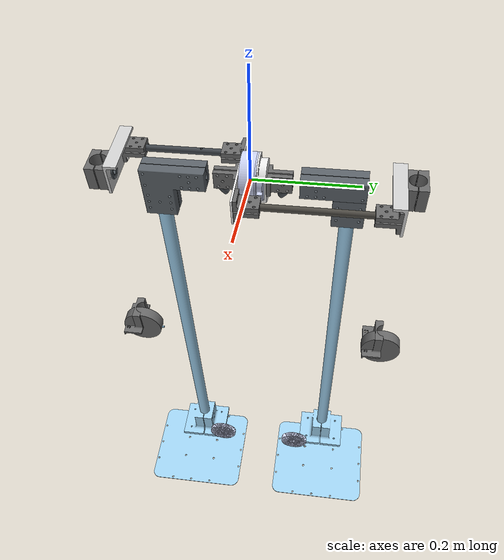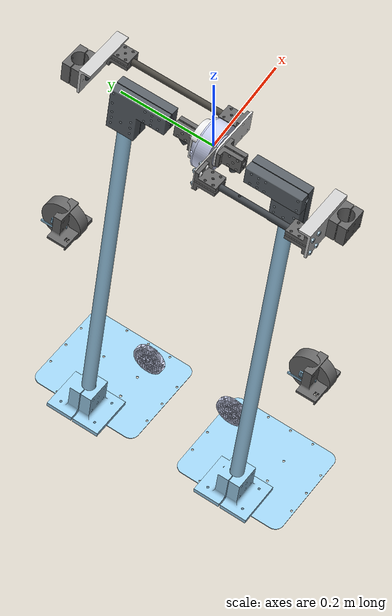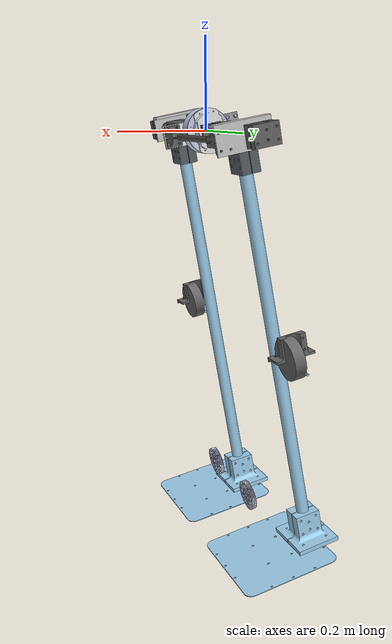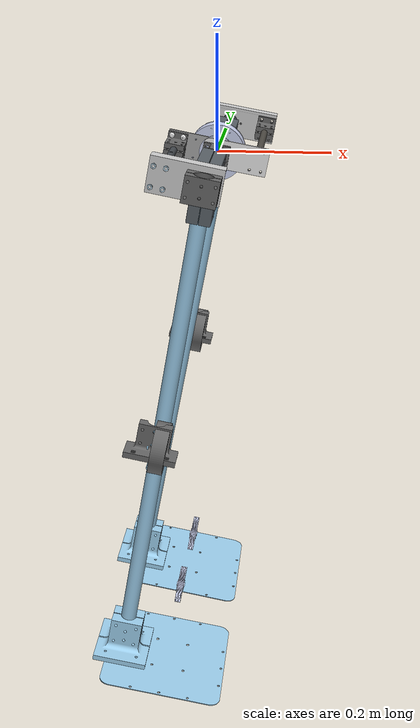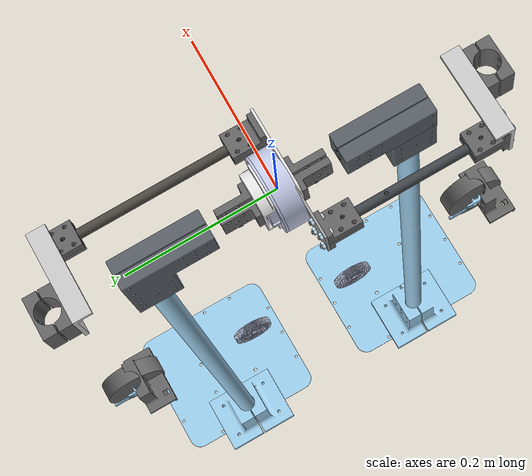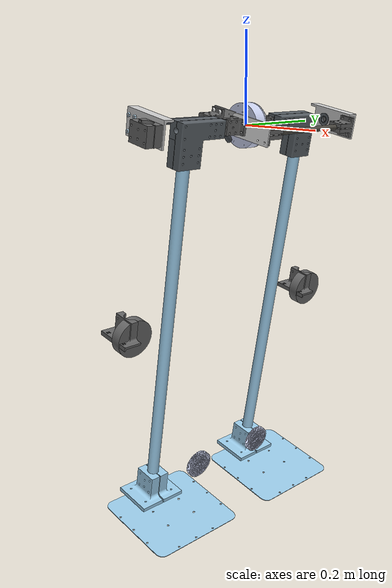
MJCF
<?xml version="1.0" ?>
<!-- Generated using onshape-to-robot -->
<!-- Onshape https://cad.onshape.com/documents/17c5c8d07f4ec308269aab5c/w/49bf5d1c311d43a28f235e29/e/7a95d7201ea4c0bf52a6e0de -->
<mujoco model="export_robot_test">
  <compiler angle="radian" meshdir="assets" autolimits="true"/>
  <default>
    <default class="export_robot_test">
      <joint frictionloss="0.1" armature="0.005"/>
      <position kp="50" dampratio="1"/>
      <default class="visual">
        <geom type="mesh" contype="0" conaffinity="0" group="2"/>
      </default>
      <default class="collision">
        <geom group="3"/>
      </default>
    </default>
  </default>

  <worldbody>
    <!-- Link reduced_left_foot_2 -->
    <body name="reduced_left_foot_2" pos="0 0 0" quat="1 0 0 0" childclass="export_robot_test">
      <freejoint name="reduced_left_foot_2_freejoint"/>
      <inertial pos="-0.0645325 0.00461538 -0.567799" mass="4.81966" fullinertia="1.11497 1.00168 0.295772 -0.00238674 -0.0684407 0.00293669"/>
      <!-- Part part_1 -->
      <geom type="mesh" class="visual" pos="-0.083681 0.262583 -0.47189" quat="0.453796 -0.453796 0.542282 0.542282" mesh="part_1" material="part_1_material"/>
      <geom type="mesh" class="collision" pos="-0.083681 0.262583 -0.47189" quat="0.453796 -0.453796 0.542282 0.542282" mesh="part_1" material="part_1_material"/>
      <!-- Part part_1_2 -->
      <geom type="mesh" class="visual" pos="-0.0904555 -0.309332 -0.471402" quat="0.450431 -0.450431 0.54508 0.54508" mesh="part_1" material="part_1_material"/>
      <geom type="mesh" class="collision" pos="-0.0904555 -0.309332 -0.471402" quat="0.450431 -0.450431 0.54508 0.54508" mesh="part_1" material="part_1_material"/>
      <!-- Part part_1_3 -->
      <geom type="mesh" class="visual" pos="-0.000874984 0.03165 -0.000241419" quat="0.770859 4.75532e-16 -0.637006 -5.92408e-16" mesh="part_1__2" material="part_1__2_material"/>
      <geom type="mesh" class="collision" pos="-0.000874984 0.03165 -0.000241419" quat="0.770859 4.75532e-16 -0.637006 -5.92408e-16" mesh="part_1__2" material="part_1__2_material"/>
      <!-- Part part_1_4 -->
      <geom type="mesh" class="visual" pos="0.0707542 -0.01785 -0.0122902" quat="1.04633e-16 0.0884856 -1.11022e-16 0.996077" mesh="part_1__3" material="part_1__3_material"/>
      <geom type="mesh" class="collision" pos="0.0707542 -0.01785 -0.0122902" quat="1.04633e-16 0.0884856 -1.11022e-16 0.996077" mesh="part_1__3" material="part_1__3_material"/>
      <!-- Part part_1_5 -->
      <geom type="mesh" class="visual" pos="-0.0789215 0.2932 -0.445313" quat="0.704333 -0.0625687 0.0625687 -0.704333" mesh="part_1__4" material="part_1__4_material"/>
      <geom type="mesh" class="collision" pos="-0.0789215 0.2932 -0.445313" quat="0.704333 -0.0625687 0.0625687 -0.704333" mesh="part_1__4" material="part_1__4_material"/>
      <!-- Part part_1_6 -->
      <geom type="mesh" class="visual" pos="-0.0697992 -0.01785 0.0130105" quat="3.95531e-16 0.995511 -5.68989e-16 -0.0946486" mesh="part_1__5" material="part_1__5_material"/>
      <geom type="mesh" class="collision" pos="-0.0697992 -0.01785 0.0130105" quat="3.95531e-16 0.995511 -5.68989e-16 -0.0946486" mesh="part_1__5" material="part_1__5_material"/>
      <!-- Part 90591a260_zinc_plated_steel_hex_nut -->
      <geom type="mesh" class="visual" pos="-0.0764872 -0.261665 0.0312213" quat="0.703932 -0.703932 0.0669267 0.0669267" mesh="90591a260_zinc_plated_steel_hex_nut" material="90591a260_zinc_plated_steel_hex_nut_material"/>
      <geom type="mesh" class="collision" pos="-0.0764872 -0.261665 0.0312213" quat="0.703932 -0.703932 0.0669267 0.0669267" mesh="90591a260_zinc_plated_steel_hex_nut" material="90591a260_zinc_plated_steel_hex_nut_material"/>
      <!-- Part motor_stator_bracker -->
      <geom type="mesh" class="visual" pos="-0.000997625 0.01565 -0.000217887" quat="3.93497e-17 -0.770859 1.11022e-16 -0.637006" mesh="motor_stator_bracker" material="motor_stator_bracker_material"/>
      <geom type="mesh" class="collision" pos="-0.000997625 0.01565 -0.000217887" quat="3.93497e-17 -0.770859 1.11022e-16 -0.637006" mesh="motor_stator_bracker" material="motor_stator_bracker_material"/>
      <!-- Part part_1_7 -->
      <geom type="mesh" class="visual" pos="0.0941791 0.27415 0.016404" quat="0.0625687 -0.704333 -0.704333 0.0625687" mesh="part_1__6" material="part_1__6_material"/>
      <geom type="mesh" class="collision" pos="0.0941791 0.27415 0.016404" quat="0.0625687 -0.704333 -0.704333 0.0625687" mesh="part_1__6" material="part_1__6_material"/>
      <!-- Part part_1_8 -->
      <geom type="mesh" class="visual" pos="-0.0813758 -0.259665 0.0481967" quat="0.0669267 0.703932 -0.703932 -0.0669267" mesh="part_1__6" material="part_1__6_material"/>
      <geom type="mesh" class="collision" pos="-0.0813758 -0.259665 0.0481967" quat="0.0669267 0.703932 -0.703932 -0.0669267" mesh="part_1__6" material="part_1__6_material"/>
      <!-- Part part_1_9 -->
      <geom type="mesh" class="visual" pos="-0.000369909 -0.02125 6.62438e-05" quat="3.67725e-17 0.766902 1.11022e-16 0.641764" mesh="part_1__2" material="part_1__2_material"/>
      <geom type="mesh" class="collision" pos="-0.000369909 -0.02125 6.62438e-05" quat="3.67725e-17 0.766902 1.11022e-16 0.641764" mesh="part_1__2" material="part_1__2_material"/>
      <!-- Part 91239a232_button_head_hex_drive_screw -->
      <geom type="mesh" class="visual" pos="-0.0764872 -0.25429 0.0312213" quat="0.54508 -0.54508 -0.450431 -0.450431" mesh="91239a232_button_head_hex_drive_screw" material="91239a232_button_head_hex_drive_screw_material"/>
      <geom type="mesh" class="collision" pos="-0.0764872 -0.25429 0.0312213" quat="0.54508 -0.54508 -0.450431 -0.450431" mesh="91239a232_button_head_hex_drive_screw" material="91239a232_button_head_hex_drive_screw_material"/>
      <!-- Part part_1_10 -->
      <geom type="mesh" class="visual" pos="-0.0853674 -0.278715 -0.444885" quat="0.703932 -0.0669267 0.0669267 -0.703932" mesh="part_1__4" material="part_1__4_material"/>
      <geom type="mesh" class="collision" pos="-0.0853674 -0.278715 -0.444885" quat="0.703932 -0.0669267 0.0669267 -0.703932" mesh="part_1__4" material="part_1__4_material"/>
      <!-- Part 90591a260_zinc_plated_steel_hex_nut_2 -->
      <geom type="mesh" class="visual" pos="-0.0763457 -0.01285 0.0319588" quat="0.703932 -0.703932 0.0669267 0.0669267" mesh="90591a260_zinc_plated_steel_hex_nut" material="90591a260_zinc_plated_steel_hex_nut_material"/>
      <geom type="mesh" class="collision" pos="-0.0763457 -0.01285 0.0319588" quat="0.703932 -0.703932 0.0669267 0.0669267" mesh="90591a260_zinc_plated_steel_hex_nut" material="90591a260_zinc_plated_steel_hex_nut_material"/>
      <!-- Part part_1_11 -->
      <geom type="mesh" class="visual" pos="-0.0515319 -0.01785 0.00988724" quat="1.84889e-16 0.637006 -3.33067e-16 -0.770859" mesh="part_1__7" material="part_1__7_material"/>
      <geom type="mesh" class="collision" pos="-0.0515319 -0.01785 0.00988724" quat="1.84889e-16 0.637006 -3.33067e-16 -0.770859" mesh="part_1__7" material="part_1__7_material"/>
      <!-- Part 91239a232_button_head_hex_drive_screw_2 -->
      <geom type="mesh" class="visual" pos="-0.0764399 -0.018225 0.0314677" quat="0.54508 0.54508 -0.450431 0.450431" mesh="91239a232_button_head_hex_drive_screw" material="91239a232_button_head_hex_drive_screw_material"/>
      <geom type="mesh" class="collision" pos="-0.0764399 -0.018225 0.0314677" quat="0.54508 0.54508 -0.450431 0.450431" mesh="91239a232_button_head_hex_drive_screw" material="91239a232_button_head_hex_drive_screw_material"/>
      <!-- Part motor_rotor_bracket -->
      <geom type="mesh" class="visual" pos="0.0416526 -0.01785 -0.170894" quat="0.0884856 -8.60049e-17 -0.996077 2.77556e-17" mesh="motor_rotor_bracket" material="motor_rotor_bracket_material"/>
      <geom type="mesh" class="collision" pos="0.0416526 -0.01785 -0.170894" quat="0.0884856 -8.60049e-17 -0.996077 2.77556e-17" mesh="motor_rotor_bracket" material="motor_rotor_bracket_material"/>
      <!-- Part part_1_12 -->
      <geom type="mesh" class="visual" pos="-0.165686 -0.16925 -0.919187" quat="0.704333 0.0625687 0.0625687 0.704333" mesh="part_1__8" material="part_1__8_material"/>
      <geom type="mesh" class="collision" pos="-0.165686 -0.16925 -0.919187" quat="0.704333 0.0625687 0.0625687 0.704333" mesh="part_1__8" material="part_1__8_material"/>
      <!-- Part part_1_13 -->
      <geom type="mesh" class="visual" pos="-0.165686 -0.17025 -0.919187" quat="0.704333 -0.0625687 0.0625687 -0.704333" mesh="part_1__8" material="part_1__8_material"/>
      <geom type="mesh" class="collision" pos="-0.165686 -0.17025 -0.919187" quat="0.704333 -0.0625687 0.0625687 -0.704333" mesh="part_1__8" material="part_1__8_material"/>
      <!-- Part part_1_14 -->
      <geom type="mesh" class="visual" pos="-0.195045 -0.09475 -0.925219" quat="0.704333 -0.0625687 0.0625687 -0.704333" mesh="part_1__9" material="part_1__9_material"/>
      <geom type="mesh" class="collision" pos="-0.195045 -0.09475 -0.925219" quat="0.704333 -0.0625687 0.0625687 -0.704333" mesh="part_1__9" material="part_1__9_material"/>
      <!-- Part part_1_15 -->
      <geom type="mesh" class="visual" pos="-0.0632346 -0.0957527 -0.832125" quat="0.453796 -0.542282 0.542282 -0.453796" mesh="part_1__10" material="part_1__10_material"/>
      <geom type="mesh" class="collision" pos="-0.0632346 -0.0957527 -0.832125" quat="0.453796 -0.542282 0.542282 -0.453796" mesh="part_1__10" material="part_1__10_material"/>
      <!-- Part part_1_16 -->
      <geom type="mesh" class="visual" pos="-0.0632346 -0.0957527 -0.832125" quat="0.453796 -0.542282 0.542282 -0.453796" mesh="part_1__11" material="part_1__11_material"/>
      <geom type="mesh" class="collision" pos="-0.0632346 -0.0957527 -0.832125" quat="0.453796 -0.542282 0.542282 -0.453796" mesh="part_1__11" material="part_1__11_material"/>
      <!-- Part part_1_17 -->
      <geom type="mesh" class="visual" pos="-0.165686 -0.17025 -0.919187" quat="0.704333 0.0625687 0.0625687 0.704333" mesh="part_1__12" material="part_1__12_material"/>
      <geom type="mesh" class="collision" pos="-0.165686 -0.17025 -0.919187" quat="0.704333 0.0625687 0.0625687 0.704333" mesh="part_1__12" material="part_1__12_material"/>
      <!-- Part part_1_18 -->
      <geom type="mesh" class="visual" pos="-0.0632346 -0.0957527 -0.832125" quat="0.453796 -0.542282 0.542282 -0.453796" mesh="part_1__13" material="part_1__13_material"/>
      <geom type="mesh" class="collision" pos="-0.0632346 -0.0957527 -0.832125" quat="0.453796 -0.542282 0.542282 -0.453796" mesh="part_1__13" material="part_1__13_material"/>
      <!-- Part part_1_19 -->
      <geom type="mesh" class="visual" pos="-0.176213 0.17965 -0.917636" quat="0.703932 -0.0669267 0.0669267 -0.703932" mesh="part_1__8" material="part_1__8_material"/>
      <geom type="mesh" class="collision" pos="-0.176213 0.17965 -0.917636" quat="0.703932 -0.0669267 0.0669267 -0.703932" mesh="part_1__8" material="part_1__8_material"/>
      <!-- Part part_1_20 -->
      <geom type="mesh" class="visual" pos="-0.176213 0.18065 -0.917636" quat="0.703932 0.0669267 0.0669267 0.703932" mesh="part_1__8" material="part_1__8_material"/>
      <geom type="mesh" class="collision" pos="-0.176213 0.18065 -0.917636" quat="0.703932 0.0669267 0.0669267 0.703932" mesh="part_1__8" material="part_1__8_material"/>
      <!-- Part part_1_21 -->
      <geom type="mesh" class="visual" pos="0.0297337 0.10515 -0.96847" quat="0.703932 0.0669267 0.0669267 0.703932" mesh="part_1__9" material="part_1__9_material"/>
      <geom type="mesh" class="collision" pos="0.0297337 0.10515 -0.96847" quat="0.703932 0.0669267 0.0669267 0.703932" mesh="part_1__9" material="part_1__9_material"/>
      <!-- Part part_1_22 -->
      <geom type="mesh" class="visual" pos="-0.0599246 0.106153 -0.834298" quat="0.54508 -0.450431 -0.450431 0.54508" mesh="part_1__10" material="part_1__10_material"/>
      <geom type="mesh" class="collision" pos="-0.0599246 0.106153 -0.834298" quat="0.54508 -0.450431 -0.450431 0.54508" mesh="part_1__10" material="part_1__10_material"/>
      <!-- Part part_1_23 -->
      <geom type="mesh" class="visual" pos="-0.0599246 0.106153 -0.834298" quat="0.54508 -0.450431 -0.450431 0.54508" mesh="part_1__11" material="part_1__11_material"/>
      <geom type="mesh" class="collision" pos="-0.0599246 0.106153 -0.834298" quat="0.54508 -0.450431 -0.450431 0.54508" mesh="part_1__11" material="part_1__11_material"/>
      <!-- Part part_1_24 -->
      <geom type="mesh" class="visual" pos="-0.176213 0.18065 -0.917636" quat="0.703932 -0.0669267 0.0669267 -0.703932" mesh="part_1__12" material="part_1__12_material"/>
      <geom type="mesh" class="collision" pos="-0.176213 0.18065 -0.917636" quat="0.703932 -0.0669267 0.0669267 -0.703932" mesh="part_1__12" material="part_1__12_material"/>
      <!-- Part part_1_25 -->
      <geom type="mesh" class="visual" pos="-0.0599246 0.106153 -0.834298" quat="0.54508 -0.450431 -0.450431 0.54508" mesh="part_1__13" material="part_1__13_material"/>
      <geom type="mesh" class="collision" pos="-0.0599246 0.106153 -0.834298" quat="0.54508 -0.450431 -0.450431 0.54508" mesh="part_1__13" material="part_1__13_material"/>
      <!-- Part part_1_26 -->
      <geom type="mesh" class="visual" pos="-0.00433503 -0.278715 -0.0225897" quat="0.703932 0.0669267 0.0669267 0.703932" mesh="part_1__14" material="part_1__14_material"/>
      <geom type="mesh" class="collision" pos="-0.00433503 -0.278715 -0.0225897" quat="0.703932 0.0669267 0.0669267 0.703932" mesh="part_1__14" material="part_1__14_material"/>
      <!-- Part part_1_27 -->
      <geom type="mesh" class="visual" pos="-0.00433503 -0.278715 -0.0225897" quat="0.703932 -0.0669267 0.0669267 -0.703932" mesh="part_1__15" material="part_1__15_material"/>
      <geom type="mesh" class="collision" pos="-0.00433503 -0.278715 -0.0225897" quat="0.703932 -0.0669267 0.0669267 -0.703932" mesh="part_1__15" material="part_1__15_material"/>
      <!-- Part part_1_28 -->
      <geom type="mesh" class="visual" pos="-0.00124315 0.07665 -0.000170775" quat="0.0669267 0.0669267 -0.703932 0.703932" mesh="part_1__16" material="part_1__16_material"/>
      <geom type="mesh" class="collision" pos="-0.00124315 0.07665 -0.000170775" quat="0.0669267 0.0669267 -0.703932 0.703932" mesh="part_1__16" material="part_1__16_material"/>
      <!-- Part part_1_29 -->
      <geom type="mesh" class="visual" pos="-0.000261062 0.07665 -0.000359222" quat="0.703932 0.703932 0.0669267 -0.0669267" mesh="part_1__16" material="part_1__16_material"/>
      <geom type="mesh" class="collision" pos="-0.000261062 0.07665 -0.000359222" quat="0.703932 0.703932 0.0669267 -0.0669267" mesh="part_1__16" material="part_1__16_material"/>
      <!-- Part part_1_30 -->
      <geom type="mesh" class="visual" pos="-9.49643e-05 -0.25198 -0.000492804" quat="0.637006 -6.72981e-16 0.770859 -5.55112e-16" mesh="part_1__17" material="part_1__17_material"/>
      <geom type="mesh" class="collision" pos="-9.49643e-05 -0.25198 -0.000492804" quat="0.637006 -6.72981e-16 0.770859 -5.55112e-16" mesh="part_1__17" material="part_1__17_material"/>
      <!-- Part part_1_31 -->
      <geom type="mesh" class="visual" pos="-9.49643e-05 -0.25198 -0.000492804" quat="0.871894 -9.67014e-16 -0.489694 5.55112e-17" mesh="part_1__18" material="part_1__18_material"/>
      <geom type="mesh" class="collision" pos="-9.49643e-05 -0.25198 -0.000492804" quat="0.871894 -9.67014e-16 -0.489694 5.55112e-17" mesh="part_1__18" material="part_1__18_material"/>
      <!-- Part part_1_32 -->
      <geom type="mesh" class="visual" pos="-0.0853674 -0.278332 -0.444885" quat="0.703932 0.0669267 0.0669267 0.703932" mesh="part_1__19" material="part_1__19_material"/>
      <geom type="mesh" class="collision" pos="-0.0853674 -0.278332 -0.444885" quat="0.703932 0.0669267 0.0669267 0.703932" mesh="part_1__19" material="part_1__19_material"/>
      <!-- Part part_1_33 -->
      <geom type="mesh" class="visual" pos="-0.0853674 -0.276332 -0.444885" quat="0.703932 -0.0669267 0.0669267 -0.703932" mesh="part_1__20" material="part_1__20_material"/>
      <geom type="mesh" class="collision" pos="-0.0853674 -0.276332 -0.444885" quat="0.703932 -0.0669267 0.0669267 -0.703932" mesh="part_1__20" material="part_1__20_material"/>
      <!-- Part part_1_34 -->
      <geom type="mesh" class="visual" pos="0.0708201 0.22415 -0.0119219" quat="0.542282 -0.542282 -0.453796 -0.453796" mesh="part_1__16" material="part_1__16_material"/>
      <geom type="mesh" class="collision" pos="0.0708201 0.22415 -0.0119219" quat="0.542282 -0.542282 -0.453796 -0.453796" mesh="part_1__16" material="part_1__16_material"/>
      <!-- Part part_1_35 -->
      <geom type="mesh" class="visual" pos="0.0706438 0.22415 -0.0129062" quat="0.453796 -0.453796 0.542282 0.542282" mesh="part_1__16" material="part_1__16_material"/>
      <geom type="mesh" class="collision" pos="0.0706438 0.22415 -0.0129062" quat="0.453796 -0.453796 0.542282 0.542282" mesh="part_1__16" material="part_1__16_material"/>
      <!-- Part part_1_36 -->
      <geom type="mesh" class="visual" pos="-0.000738255 -0.06625 0.000132208" quat="0.0625687 -0.0625687 -0.704333 -0.704333" mesh="part_1__16" material="part_1__16_material"/>
      <geom type="mesh" class="collision" pos="-0.000738255 -0.06625 0.000132208" quat="0.0625687 -0.0625687 -0.704333 -0.704333" mesh="part_1__16" material="part_1__16_material"/>
      <!-- Part part_1_37 -->
      <geom type="mesh" class="visual" pos="0.000246085 -0.06625 -4.40692e-05" quat="0.704333 -0.704333 0.0625687 0.0625687" mesh="part_1__16" material="part_1__16_material"/>
      <geom type="mesh" class="collision" pos="0.000246085 -0.06625 -4.40692e-05" quat="0.704333 -0.704333 0.0625687 0.0625687" mesh="part_1__16" material="part_1__16_material"/>
      <!-- Part 91239a232_button_head_hex_drive_screw_3 -->
      <geom type="mesh" class="visual" pos="-0.0567983 -0.018225 0.0276988" quat="0.54508 0.54508 -0.450431 0.450431" mesh="91239a232_button_head_hex_drive_screw" material="91239a232_button_head_hex_drive_screw_material"/>
      <geom type="mesh" class="collision" pos="-0.0567983 -0.018225 0.0276988" quat="0.54508 0.54508 -0.450431 0.450431" mesh="91239a232_button_head_hex_drive_screw" material="91239a232_button_head_hex_drive_screw_material"/>
      <!-- Part 91239a232_button_head_hex_drive_screw_4 -->
      <geom type="mesh" class="visual" pos="-0.0828471 -0.018225 -0.00192308" quat="0.54508 0.54508 -0.450431 0.450431" mesh="91239a232_button_head_hex_drive_screw" material="91239a232_button_head_hex_drive_screw_material"/>
      <geom type="mesh" class="collision" pos="-0.0828471 -0.018225 -0.00192308" quat="0.54508 0.54508 -0.450431 0.450431" mesh="91239a232_button_head_hex_drive_screw" material="91239a232_button_head_hex_drive_screw_material"/>
      <!-- Part 91239a232_button_head_hex_drive_screw_5 -->
      <geom type="mesh" class="visual" pos="-0.0632055 -0.018225 -0.00569203" quat="0.54508 0.54508 -0.450431 0.450431" mesh="91239a232_button_head_hex_drive_screw" material="91239a232_button_head_hex_drive_screw_material"/>
      <geom type="mesh" class="collision" pos="-0.0632055 -0.018225 -0.00569203" quat="0.54508 0.54508 -0.450431 0.450431" mesh="91239a232_button_head_hex_drive_screw" material="91239a232_button_head_hex_drive_screw_material"/>
      <!-- Part 90591a260_zinc_plated_steel_hex_nut_3 -->
      <geom type="mesh" class="visual" pos="-0.056704 -0.01285 0.0281898" quat="0.703932 -0.703932 0.0669267 0.0669267" mesh="90591a260_zinc_plated_steel_hex_nut" material="90591a260_zinc_plated_steel_hex_nut_material"/>
      <geom type="mesh" class="collision" pos="-0.056704 -0.01285 0.0281898" quat="0.703932 -0.703932 0.0669267 0.0669267" mesh="90591a260_zinc_plated_steel_hex_nut" material="90591a260_zinc_plated_steel_hex_nut_material"/>
      <!-- Part 90591a260_zinc_plated_steel_hex_nut_4 -->
      <geom type="mesh" class="visual" pos="-0.0827529 -0.01285 -0.00143204" quat="0.703932 -0.703932 0.0669267 0.0669267" mesh="90591a260_zinc_plated_steel_hex_nut" material="90591a260_zinc_plated_steel_hex_nut_material"/>
      <geom type="mesh" class="collision" pos="-0.0827529 -0.01285 -0.00143204" quat="0.703932 -0.703932 0.0669267 0.0669267" mesh="90591a260_zinc_plated_steel_hex_nut" material="90591a260_zinc_plated_steel_hex_nut_material"/>
      <!-- Part 90591a260_zinc_plated_steel_hex_nut_5 -->
      <geom type="mesh" class="visual" pos="-0.0631113 -0.01285 -0.00520099" quat="0.703932 -0.703932 0.0669267 0.0669267" mesh="90591a260_zinc_plated_steel_hex_nut" material="90591a260_zinc_plated_steel_hex_nut_material"/>
      <geom type="mesh" class="collision" pos="-0.0631113 -0.01285 -0.00520099" quat="0.703932 -0.703932 0.0669267 0.0669267" mesh="90591a260_zinc_plated_steel_hex_nut" material="90591a260_zinc_plated_steel_hex_nut_material"/>
      <!-- Part part_1_38 -->
      <geom type="mesh" class="visual" pos="-0.0789215 0.293583 -0.445313" quat="0.704333 0.0625687 0.0625687 0.704333" mesh="part_1__19" material="part_1__19_material"/>
      <geom type="mesh" class="collision" pos="-0.0789215 0.293583 -0.445313" quat="0.704333 0.0625687 0.0625687 0.704333" mesh="part_1__19" material="part_1__19_material"/>
      <!-- Part part_1_39 -->
      <geom type="mesh" class="visual" pos="-0.0789215 0.295583 -0.445313" quat="0.704333 -0.0625687 0.0625687 -0.704333" mesh="part_1__20" material="part_1__20_material"/>
      <geom type="mesh" class="collision" pos="-0.0789215 0.295583 -0.445313" quat="0.704333 -0.0625687 0.0625687 -0.704333" mesh="part_1__20" material="part_1__20_material"/>
      <!-- Part part_1_40 -->
      <geom type="mesh" class="visual" pos="0.0708201 0.02715 -0.0119219" quat="0.542282 0.542282 -0.453796 0.453796" mesh="part_1__16" material="part_1__16_material"/>
      <geom type="mesh" class="collision" pos="0.0708201 0.02715 -0.0119219" quat="0.542282 0.542282 -0.453796 0.453796" mesh="part_1__16" material="part_1__16_material"/>
      <!-- Part part_1_41 -->
      <geom type="mesh" class="visual" pos="0.0706438 0.02715 -0.0129062" quat="0.453796 0.453796 0.542282 -0.542282" mesh="part_1__16" material="part_1__16_material"/>
      <geom type="mesh" class="collision" pos="0.0706438 0.02715 -0.0129062" quat="0.453796 0.453796 0.542282 -0.542282" mesh="part_1__16" material="part_1__16_material"/>
      <!-- Part 90591a260_zinc_plated_steel_hex_nut_6 -->
      <geom type="mesh" class="visual" pos="-0.0828944 -0.261665 -0.0021695" quat="0.703932 -0.703932 0.0669267 0.0669267" mesh="90591a260_zinc_plated_steel_hex_nut" material="90591a260_zinc_plated_steel_hex_nut_material"/>
      <geom type="mesh" class="collision" pos="-0.0828944 -0.261665 -0.0021695" quat="0.703932 -0.703932 0.0669267 0.0669267" mesh="90591a260_zinc_plated_steel_hex_nut" material="90591a260_zinc_plated_steel_hex_nut_material"/>
      <!-- Part 91239a232_button_head_hex_drive_screw_6 -->
      <geom type="mesh" class="visual" pos="-0.0632528 -0.25429 -0.00593845" quat="0.54508 -0.54508 -0.450431 -0.450431" mesh="91239a232_button_head_hex_drive_screw" material="91239a232_button_head_hex_drive_screw_material"/>
      <geom type="mesh" class="collision" pos="-0.0632528 -0.25429 -0.00593845" quat="0.54508 -0.54508 -0.450431 -0.450431" mesh="91239a232_button_head_hex_drive_screw" material="91239a232_button_head_hex_drive_screw_material"/>
      <!-- Part 90591a260_zinc_plated_steel_hex_nut_7 -->
      <geom type="mesh" class="visual" pos="-0.0632528 -0.261665 -0.00593845" quat="0.703932 -0.703932 0.0669267 0.0669267" mesh="90591a260_zinc_plated_steel_hex_nut" material="90591a260_zinc_plated_steel_hex_nut_material"/>
      <geom type="mesh" class="collision" pos="-0.0632528 -0.261665 -0.00593845" quat="0.703932 -0.703932 0.0669267 0.0669267" mesh="90591a260_zinc_plated_steel_hex_nut" material="90591a260_zinc_plated_steel_hex_nut_material"/>
      <!-- Part 91239a232_button_head_hex_drive_screw_7 -->
      <geom type="mesh" class="visual" pos="-0.0568456 -0.25429 0.0274524" quat="0.54508 -0.54508 -0.450431 -0.450431" mesh="91239a232_button_head_hex_drive_screw" material="91239a232_button_head_hex_drive_screw_material"/>
      <geom type="mesh" class="collision" pos="-0.0568456 -0.25429 0.0274524" quat="0.54508 -0.54508 -0.450431 -0.450431" mesh="91239a232_button_head_hex_drive_screw" material="91239a232_button_head_hex_drive_screw_material"/>
      <!-- Part 90591a260_zinc_plated_steel_hex_nut_8 -->
      <geom type="mesh" class="visual" pos="-0.0568456 -0.261665 0.0274524" quat="0.703932 -0.703932 0.0669267 0.0669267" mesh="90591a260_zinc_plated_steel_hex_nut" material="90591a260_zinc_plated_steel_hex_nut_material"/>
      <geom type="mesh" class="collision" pos="-0.0568456 -0.261665 0.0274524" quat="0.703932 -0.703932 0.0669267 0.0669267" mesh="90591a260_zinc_plated_steel_hex_nut" material="90591a260_zinc_plated_steel_hex_nut_material"/>
      <!-- Part 91239a232_button_head_hex_drive_screw_8 -->
      <geom type="mesh" class="visual" pos="-0.0828944 -0.25429 -0.0021695" quat="0.54508 -0.54508 -0.450431 -0.450431" mesh="91239a232_button_head_hex_drive_screw" material="91239a232_button_head_hex_drive_screw_material"/>
      <geom type="mesh" class="collision" pos="-0.0828944 -0.25429 -0.0021695" quat="0.54508 -0.54508 -0.450431 -0.450431" mesh="91239a232_button_head_hex_drive_screw" material="91239a232_button_head_hex_drive_screw_material"/>
      <!-- Part part_3 -->
      <geom type="mesh" class="visual" pos="-0.00985736 -0.17025 -0.0490302" quat="0.704333 -0.0625687 0.0625687 -0.704333" mesh="part_3" material="part_3_material"/>
      <geom type="mesh" class="collision" pos="-0.00985736 -0.17025 -0.0490302" quat="0.704333 -0.0625687 0.0625687 -0.704333" mesh="part_3" material="part_3_material"/>
      <!-- Part part_2 -->
      <geom type="mesh" class="visual" pos="-0.00985736 -0.17025 -0.0490302" quat="0.704333 -0.0625687 0.0625687 -0.704333" mesh="part_2" material="part_2_material"/>
      <geom type="mesh" class="collision" pos="-0.00985736 -0.17025 -0.0490302" quat="0.704333 -0.0625687 0.0625687 -0.704333" mesh="part_2" material="part_2_material"/>
      <!-- Part part_1_42 -->
      <geom type="mesh" class="visual" pos="-0.00850949 -0.17025 -0.0492715" quat="0.704333 -0.0625687 0.0625687 -0.704333" mesh="part_1__21" material="part_1__21_material"/>
      <geom type="mesh" class="collision" pos="-0.00850949 -0.17025 -0.0492715" quat="0.704333 -0.0625687 0.0625687 -0.704333" mesh="part_1__21" material="part_1__21_material"/>
      <!-- Part part_3_2 -->
      <geom type="mesh" class="visual" pos="-0.00964414 0.18065 -0.0495728" quat="0.0669267 0.703932 -0.703932 -0.0669267" mesh="part_3" material="part_3_material"/>
      <geom type="mesh" class="collision" pos="-0.00964414 0.18065 -0.0495728" quat="0.0669267 0.703932 -0.703932 -0.0669267" mesh="part_3" material="part_3_material"/>
      <!-- Part part_2_2 -->
      <geom type="mesh" class="visual" pos="-0.0096253 0.18065 -0.0494745" quat="0.703932 0.0669267 0.0669267 0.703932" mesh="part_2" material="part_2_material"/>
      <geom type="mesh" class="collision" pos="-0.0096253 0.18065 -0.0494745" quat="0.703932 0.0669267 0.0669267 0.703932" mesh="part_2" material="part_2_material"/>
      <!-- Part part_1_43 -->
      <geom type="mesh" class="visual" pos="-0.0109701 0.18065 -0.0492165" quat="0.703932 0.0669267 0.0669267 0.703932" mesh="part_1__21" material="part_1__21_material"/>
      <geom type="mesh" class="collision" pos="-0.0109701 0.18065 -0.0492165" quat="0.703932 0.0669267 0.0669267 0.703932" mesh="part_1__21" material="part_1__21_material"/>
      <!-- Part part_1_44 -->
      <geom type="mesh" class="visual" pos="0.000843793 0.27565 0.000101598" quat="0.51658 3.32228e-17 -0.856239 -4.44089e-16" mesh="part_1__17" material="part_1__17_material"/>
      <geom type="mesh" class="collision" pos="0.000843793 0.27565 0.000101598" quat="0.51658 3.32228e-17 -0.856239 -4.44089e-16" mesh="part_1__17" material="part_1__17_material"/>
      <!-- Part part_1_45 -->
      <geom type="mesh" class="visual" pos="0.000843793 0.27565 0.000101598" quat="0.0884856 -3.30075e-17 -0.996077 -3.33067e-16" mesh="part_1__18" material="part_1__18_material"/>
      <geom type="mesh" class="collision" pos="0.000843793 0.27565 0.000101598" quat="0.0884856 -3.30075e-17 -0.996077 -3.33067e-16" mesh="part_1__18" material="part_1__18_material"/>
      <!-- Part part_1_46 -->
      <geom type="mesh" class="visual" pos="-0.0699171 -0.209665 0.0123959" quat="0.450431 0.450431 0.54508 -0.54508" mesh="part_1__16" material="part_1__16_material"/>
      <geom type="mesh" class="collision" pos="-0.0699171 -0.209665 0.0123959" quat="0.450431 0.450431 0.54508 -0.54508" mesh="part_1__16" material="part_1__16_material"/>
      <!-- Part part_1_47 -->
      <geom type="mesh" class="visual" pos="-0.0697287 -0.209665 0.013378" quat="0.54508 0.54508 -0.450431 0.450431" mesh="part_1__16" material="part_1__16_material"/>
      <geom type="mesh" class="collision" pos="-0.0697287 -0.209665 0.013378" quat="0.54508 0.54508 -0.450431 0.450431" mesh="part_1__16" material="part_1__16_material"/>
      <!-- Part part_1_48 -->
      <geom type="mesh" class="visual" pos="-0.0698698 -0.06285 0.0126423" quat="0.450431 -0.450431 0.54508 0.54508" mesh="part_1__16" material="part_1__16_material"/>
      <geom type="mesh" class="collision" pos="-0.0698698 -0.06285 0.0126423" quat="0.450431 -0.450431 0.54508 0.54508" mesh="part_1__16" material="part_1__16_material"/>
      <!-- Part part_1_49 -->
      <geom type="mesh" class="visual" pos="-0.0696814 -0.06285 0.0136244" quat="0.54508 -0.54508 -0.450431 -0.450431" mesh="part_1__16" material="part_1__16_material"/>
      <geom type="mesh" class="collision" pos="-0.0696814 -0.06285 0.0136244" quat="0.54508 -0.54508 -0.450431 -0.450431" mesh="part_1__16" material="part_1__16_material"/>
      <!-- Part part_1_50 -->
      <geom type="mesh" class="visual" pos="0.00481002 0.2932 0.0222493" quat="0.0625687 0.704333 -0.704333 -0.0625687" mesh="part_1__14" material="part_1__14_material"/>
      <geom type="mesh" class="collision" pos="0.00481002 0.2932 0.0222493" quat="0.0625687 0.704333 -0.704333 -0.0625687" mesh="part_1__14" material="part_1__14_material"/>
      <!-- Part part_1_51 -->
      <geom type="mesh" class="visual" pos="0.00481002 0.2932 0.0222493" quat="0.0625687 -0.704333 -0.704333 0.0625687" mesh="part_1__15" material="part_1__15_material"/>
      <geom type="mesh" class="collision" pos="0.00481002 0.2932 0.0222493" quat="0.0625687 -0.704333 -0.704333 0.0625687" mesh="part_1__15" material="part_1__15_material"/>
      <!-- Part t_motor_80_8_part_3 -->
      <geom type="mesh" class="visual" pos="-1.55784e-17 0.01785 9.04373e-17" quat="0.704333 0.704333 0.0625687 -0.0625687" mesh="t_motor_80_8_part_3" material="t_motor_80_8_part_3_material"/>
      <geom type="mesh" class="collision" pos="-1.55784e-17 0.01785 9.04373e-17" quat="0.704333 0.704333 0.0625687 -0.0625687" mesh="t_motor_80_8_part_3" material="t_motor_80_8_part_3_material"/>
      <!-- Part t_motor_80_8_part_1 -->
      <geom type="mesh" class="visual" pos="7.3658e-18 0.01265 -2.2334e-17" quat="0.450431 0.450431 0.54508 -0.54508" mesh="t_motor_80_8_part_1" material="t_motor_80_8_part_1_material"/>
      <geom type="mesh" class="collision" pos="7.3658e-18 0.01265 -2.2334e-17" quat="0.450431 0.450431 0.54508 -0.54508" mesh="t_motor_80_8_part_1" material="t_motor_80_8_part_1_material"/>
      <!-- Part t_motor_80_8_part_2 -->
      <geom type="mesh" class="visual" pos="-9.86629e-17 0.01565 -8.26036e-17" quat="0.450431 0.450431 0.54508 -0.54508" mesh="t_motor_80_8_part_2" material="t_motor_80_8_part_2_material"/>
      <geom type="mesh" class="collision" pos="-9.86629e-17 0.01565 -8.26036e-17" quat="0.450431 0.450431 0.54508 -0.54508" mesh="t_motor_80_8_part_2" material="t_motor_80_8_part_2_material"/>
    </body>
  </worldbody>
  <asset>
    <mesh file="part_1__5.stl"/>
    <mesh file="part_1.stl"/>
    <mesh file="part_1__17.stl"/>
    <mesh file="part_1__11.stl"/>
    <mesh file="part_1__10.stl"/>
    <mesh file="motor_rotor_bracket.stl"/>
    <mesh file="part_1__9.stl"/>
    <mesh file="part_1__20.stl"/>
    <mesh file="part_1__4.stl"/>
    <mesh file="motor_stator_bracker.stl"/>
    <mesh file="t_motor_80_8_part_2.stl"/>
    <mesh file="t_motor_80_8_part_3.stl"/>
    <mesh file="91239a232_button_head_hex_drive_screw.stl"/>
    <mesh file="part_1__19.stl"/>
    <mesh file="part_1__7.stl"/>
    <mesh file="part_1__13.stl"/>
    <mesh file="part_1__3.stl"/>
    <mesh file="part_1__8.stl"/>
    <mesh file="part_1__16.stl"/>
    <mesh file="part_1__2.stl"/>
    <mesh file="part_1__15.stl"/>
    <mesh file="part_1__14.stl"/>
    <mesh file="90591a260_zinc_plated_steel_hex_nut.stl"/>
    <mesh file="part_1__12.stl"/>
    <mesh file="part_1__6.stl"/>
    <mesh file="part_2.stl"/>
    <mesh file="part_1__18.stl"/>
    <mesh file="part_1__21.stl"/>
    <mesh file="t_motor_80_8_part_1.stl"/>
    <mesh file="part_3.stl"/>
    <material name="part_1_material" rgba="0.615686 0.811765 0.929412 1"/>
    <material name="part_1__2_material" rgba="0.262745 0.282353 0.301961 1"/>
    <material name="part_1__3_material" rgba="0.301961 0.290196 0.262745 1"/>
    <material name="part_1__4_material" rgba="0.615686 0.811765 0.929412 1"/>
    <material name="part_1__5_material" rgba="0.262745 0.282353 0.301961 1"/>
    <material name="90591a260_zinc_plated_steel_hex_nut_material" rgba="0.768627 0.886275 0.952941 1"/>
    <material name="motor_stator_bracker_material" rgba="0.917647 0.917647 0.917647 1"/>
    <material name="part_1__6_material" rgba="0.8 0.8 0.8 1"/>
    <material name="91239a232_button_head_hex_drive_screw_material" rgba="0.917647 0.917647 0.917647 1"/>
    <material name="part_1__7_material" rgba="0.647059 0.647059 0.647059 1"/>
    <material name="motor_rotor_bracket_material" rgba="0.917647 0.917647 0.917647 1"/>
    <material name="part_1__8_material" rgba="0.615686 0.811765 0.929412 1"/>
    <material name="part_1__9_material" rgba="0.615686 0.811765 0.929412 1"/>
    <material name="part_1__10_material" rgba="0.796078 0.823529 0.937255 1"/>
    <material name="part_1__11_material" rgba="0.796078 0.823529 0.937255 1"/>
    <material name="part_1__12_material" rgba="0.615686 0.811765 0.929412 1"/>
    <material name="part_1__13_material" rgba="0.796078 0.823529 0.937255 1"/>
    <material name="part_1__14_material" rgba="0.4 0.4 0.4 1"/>
    <material name="part_1__15_material" rgba="0.4 0.4 0.4 1"/>
    <material name="part_1__16_material" rgba="0.4 0.4 0.4 1"/>
    <material name="part_1__17_material" rgba="0.34902 0.376471 0.4 1"/>
    <material name="part_1__18_material" rgba="0.34902 0.376471 0.4 1"/>
    <material name="part_1__19_material" rgba="0.4 0.4 0.4 1"/>
    <material name="part_1__20_material" rgba="0.4 0.4 0.4 1"/>
    <material name="part_3_material" rgba="0.34902 0.376471 0.4 1"/>
    <material name="part_2_material" rgba="0.34902 0.376471 0.4 1"/>
    <material name="part_1__21_material" rgba="0.34902 0.376471 0.4 1"/>
    <material name="t_motor_80_8_part_3_material" rgba="0.796078 0.823529 0.937255 1"/>
    <material name="t_motor_80_8_part_1_material" rgba="0.796078 0.823529 0.937255 1"/>
    <material name="t_motor_80_8_part_2_material" rgba="0.796078 0.823529 0.937255 1"/>
  </asset>
  <actuator/>
  <equality/>
</mujoco>
